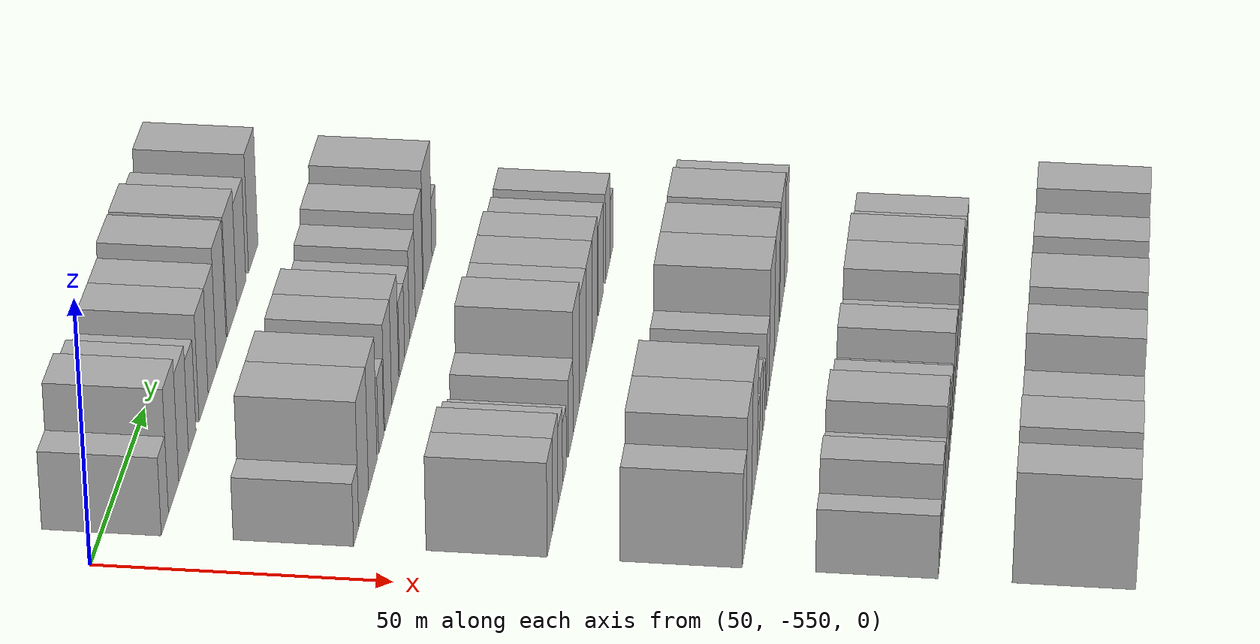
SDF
<sdf version="1.6">
 <world name="default">
  <model name="building_1">
   <static>1</static>
   <pose>50.0000 -536.6014 0 0.000000 0.000000 0.000000</pose>
   <link name="link">
    <pose>0 0 7.50 0 0 0</pose>
    <collision name="collision"><geometry><box><size>20.0000 6.7973 15.0000</size></box></geometry></collision>
    <visual name="visual">
     <cast_shadows>0</cast_shadows>
     <geometry><box><size>20.0000 6.7973 15.0000</size></box></geometry>
     <material>
      <script>
       <uri>model://HANNAS_wall/materials/scripts</uri>
       <uri>model://HANNAS_wall/materials/textures</uri>
       <name>vrc/HANNAS_wall</name>
      </script>
     </material>
    </visual>
   </link>
  </model>
  <model name="building_2">
   <static>1</static>
   <pose>50.0000 -528.2863 0 0.000000 0.000000 0.000000</pose>
   <link name="link">
    <pose>0 0 12.00 0 0 0</pose>
    <collision name="collision"><geometry><box><size>20.0000 9.8329 24.0000</size></box></geometry></collision>
    <visual name="visual">
     <cast_shadows>0</cast_shadows>
     <geometry><box><size>20.0000 9.8329 24.0000</size></box></geometry>
     <material>
      <script>
       <uri>model://HANNAS_wall/materials/scripts</uri>
       <uri>model://HANNAS_wall/materials/textures</uri>
       <name>vrc/HANNAS_wall</name>
      </script>
     </material>
    </visual>
   </link>
  </model>
  <model name="building_3">
   <static>1</static>
   <pose>50.0000 -518.5877 0 0.000000 0.000000 0.000000</pose>
   <link name="link">
    <pose>0 0 10.50 0 0 0</pose>
    <collision name="collision"><geometry><box><size>20.0000 9.5644 21.0000</size></box></geometry></collision>
    <visual name="visual">
     <cast_shadows>0</cast_shadows>
     <geometry><box><size>20.0000 9.5644 21.0000</size></box></geometry>
     <material>
      <script>
       <uri>model://HANNAS_wall/materials/scripts</uri>
       <uri>model://HANNAS_wall/materials/textures</uri>
       <name>vrc/HANNAS_wall</name>
      </script>
     </material>
    </visual>
   </link>
  </model>
  <model name="building_4">
   <static>1</static>
   <pose>50.0000 -510.1304 0 0.000000 0.000000 0.000000</pose>
   <link name="link">
    <pose>0 0 9.00 0 0 0</pose>
    <collision name="collision"><geometry><box><size>20.0000 7.3501 18.0000</size></box></geometry></collision>
    <visual name="visual">
     <cast_shadows>0</cast_shadows>
     <geometry><box><size>20.0000 7.3501 18.0000</size></box></geometry>
     <material>
      <script>
       <uri>model://HANNAS_wall/materials/scripts</uri>
       <uri>model://HANNAS_wall/materials/textures</uri>
       <name>vrc/HANNAS_wall</name>
      </script>
     </material>
    </visual>
   </link>
  </model>
  <model name="building_5">
   <static>1</static>
   <pose>50.0000 -498.8646 0 0.000000 0.000000 0.000000</pose>
   <link name="link">
    <pose>0 0 10.50 0 0 0</pose>
    <collision name="collision"><geometry><box><size>20.0000 9.1815 21.0000</size></box></geometry></collision>
    <visual name="visual">
     <cast_shadows>0</cast_shadows>
     <geometry><box><size>20.0000 9.1815 21.0000</size></box></geometry>
     <material>
      <script>
       <uri>model://HANNAS_wall/materials/scripts</uri>
       <uri>model://HANNAS_wall/materials/textures</uri>
       <name>vrc/HANNAS_wall</name>
      </script>
     </material>
    </visual>
   </link>
  </model>
  <model name="building_6">
   <static>1</static>
   <pose>50.0000 -489.9423 0 0.000000 0.000000 0.000000</pose>
   <link name="link">
    <pose>0 0 10.50 0 0 0</pose>
    <collision name="collision"><geometry><box><size>20.0000 8.6631 21.0000</size></box></geometry></collision>
    <visual name="visual">
     <cast_shadows>0</cast_shadows>
     <geometry><box><size>20.0000 8.6631 21.0000</size></box></geometry>
     <material>
      <script>
       <uri>model://HANNAS_wall/materials/scripts</uri>
       <uri>model://HANNAS_wall/materials/textures</uri>
       <name>vrc/HANNAS_wall</name>
      </script>
     </material>
    </visual>
   </link>
  </model>
  <model name="building_7">
   <static>1</static>
   <pose>50.0000 -480.5371 0 0.000000 0.000000 0.000000</pose>
   <link name="link">
    <pose>0 0 12.00 0 0 0</pose>
    <collision name="collision"><geometry><box><size>20.0000 10.1474 24.0000</size></box></geometry></collision>
    <visual name="visual">
     <cast_shadows>0</cast_shadows>
     <geometry><box><size>20.0000 10.1474 24.0000</size></box></geometry>
     <material>
      <script>
       <uri>model://HANNAS_wall/materials/scripts</uri>
       <uri>model://HANNAS_wall/materials/textures</uri>
       <name>vrc/HANNAS_wall</name>
      </script>
     </material>
    </visual>
   </link>
  </model>
  <model name="building_8">
   <static>1</static>
   <pose>50.0000 -469.3059 0 0.000000 0.000000 0.000000</pose>
   <link name="link">
    <pose>0 0 12.00 0 0 0</pose>
    <collision name="collision"><geometry><box><size>20.0000 10.3150 24.0000</size></box></geometry></collision>
    <visual name="visual">
     <cast_shadows>0</cast_shadows>
     <geometry><box><size>20.0000 10.3150 24.0000</size></box></geometry>
     <material>
      <script>
       <uri>model://HANNAS_wall/materials/scripts</uri>
       <uri>model://HANNAS_wall/materials/textures</uri>
       <name>vrc/HANNAS_wall</name>
      </script>
     </material>
    </visual>
   </link>
  </model>
  <model name="building_9">
   <static>1</static>
   <pose>50.0000 -459.2123 0 0.000000 0.000000 0.000000</pose>
   <link name="link">
    <pose>0 0 10.50 0 0 0</pose>
    <collision name="collision"><geometry><box><size>20.0000 9.8722 21.0000</size></box></geometry></collision>
    <visual name="visual">
     <cast_shadows>0</cast_shadows>
     <geometry><box><size>20.0000 9.8722 21.0000</size></box></geometry>
     <material>
      <script>
       <uri>model://HANNAS_wall/materials/scripts</uri>
       <uri>model://HANNAS_wall/materials/textures</uri>
       <name>vrc/HANNAS_wall</name>
      </script>
     </material>
    </visual>
   </link>
  </model>
  <model name="building_10">
   <static>1</static>
   <pose>50.0000 -446.0647 0 0.000000 0.000000 0.000000</pose>
   <link name="link">
    <pose>0 0 12.00 0 0 0</pose>
    <collision name="collision"><geometry><box><size>20.0000 10.4230 24.0000</size></box></geometry></collision>
    <visual name="visual">
     <cast_shadows>0</cast_shadows>
     <geometry><box><size>20.0000 10.4230 24.0000</size></box></geometry>
     <material>
      <script>
       <uri>model://HANNAS_wall/materials/scripts</uri>
       <uri>model://HANNAS_wall/materials/textures</uri>
       <name>vrc/HANNAS_wall</name>
      </script>
     </material>
    </visual>
   </link>
  </model>
  <model name="building_125">
   <static>1</static>
   <pose>82.0000 -537.0129 0 0.000000 0.000000 0.000000</pose>
   <link name="link">
    <pose>0 0 6.00 0 0 0</pose>
    <collision name="collision"><geometry><box><size>20.0000 5.9742 12.0000</size></box></geometry></collision>
    <visual name="visual">
     <cast_shadows>0</cast_shadows>
     <geometry><box><size>20.0000 5.9742 12.0000</size></box></geometry>
     <material>
      <script>
       <uri>model://HANNAS_wall/materials/scripts</uri>
       <uri>model://HANNAS_wall/materials/textures</uri>
       <name>vrc/HANNAS_wall</name>
      </script>
     </material>
    </visual>
   </link>
  </model>
  <model name="building_126">
   <static>1</static>
   <pose>82.0000 -528.3929 0 0.000000 0.000000 0.000000</pose>
   <link name="link">
    <pose>0 0 12.00 0 0 0</pose>
    <collision name="collision"><geometry><box><size>20.0000 11.2658 24.0000</size></box></geometry></collision>
    <visual name="visual">
     <cast_shadows>0</cast_shadows>
     <geometry><box><size>20.0000 11.2658 24.0000</size></box></geometry>
     <material>
      <script>
       <uri>model://HANNAS_wall/materials/scripts</uri>
       <uri>model://HANNAS_wall/materials/textures</uri>
       <name>vrc/HANNAS_wall</name>
      </script>
     </material>
    </visual>
   </link>
  </model>
  <model name="building_127">
   <static>1</static>
   <pose>82.0000 -517.7453 0 0.000000 0.000000 0.000000</pose>
   <link name="link">
    <pose>0 0 12.00 0 0 0</pose>
    <collision name="collision"><geometry><box><size>20.0000 10.0294 24.0000</size></box></geometry></collision>
    <visual name="visual">
     <cast_shadows>0</cast_shadows>
     <geometry><box><size>20.0000 10.0294 24.0000</size></box></geometry>
     <material>
      <script>
       <uri>model://HANNAS_wall/materials/scripts</uri>
       <uri>model://HANNAS_wall/materials/textures</uri>
       <name>vrc/HANNAS_wall</name>
      </script>
     </material>
    </visual>
   </link>
  </model>
  <model name="building_128">
   <static>1</static>
   <pose>82.0000 -507.5760 0 0.000000 0.000000 0.000000</pose>
   <link name="link">
    <pose>0 0 7.50 0 0 0</pose>
    <collision name="collision"><geometry><box><size>20.0000 6.3092 15.0000</size></box></geometry></collision>
    <visual name="visual">
     <cast_shadows>0</cast_shadows>
     <geometry><box><size>20.0000 6.3092 15.0000</size></box></geometry>
     <material>
      <script>
       <uri>model://HANNAS_wall/materials/scripts</uri>
       <uri>model://HANNAS_wall/materials/textures</uri>
       <name>vrc/HANNAS_wall</name>
      </script>
     </material>
    </visual>
   </link>
  </model>
  <model name="building_129">
   <static>1</static>
   <pose>82.0000 -499.1263 0 0.000000 0.000000 0.000000</pose>
   <link name="link">
    <pose>0 0 10.50 0 0 0</pose>
    <collision name="collision"><geometry><box><size>20.0000 8.5902 21.0000</size></box></geometry></collision>
    <visual name="visual">
     <cast_shadows>0</cast_shadows>
     <geometry><box><size>20.0000 8.5902 21.0000</size></box></geometry>
     <material>
      <script>
       <uri>model://HANNAS_wall/materials/scripts</uri>
       <uri>model://HANNAS_wall/materials/textures</uri>
       <name>vrc/HANNAS_wall</name>
      </script>
     </material>
    </visual>
   </link>
  </model>
  <model name="building_130">
   <static>1</static>
   <pose>82.0000 -490.4486 0 0.000000 0.000000 0.000000</pose>
   <link name="link">
    <pose>0 0 10.50 0 0 0</pose>
    <collision name="collision"><geometry><box><size>20.0000 8.7653 21.0000</size></box></geometry></collision>
    <visual name="visual">
     <cast_shadows>0</cast_shadows>
     <geometry><box><size>20.0000 8.7653 21.0000</size></box></geometry>
     <material>
      <script>
       <uri>model://HANNAS_wall/materials/scripts</uri>
       <uri>model://HANNAS_wall/materials/textures</uri>
       <name>vrc/HANNAS_wall</name>
      </script>
     </material>
    </visual>
   </link>
  </model>
  <model name="building_131">
   <static>1</static>
   <pose>82.0000 -481.8090 0 0.000000 0.000000 0.000000</pose>
   <link name="link">
    <pose>0 0 7.50 0 0 0</pose>
    <collision name="collision"><geometry><box><size>20.0000 6.5139 15.0000</size></box></geometry></collision>
    <visual name="visual">
     <cast_shadows>0</cast_shadows>
     <geometry><box><size>20.0000 6.5139 15.0000</size></box></geometry>
     <material>
      <script>
       <uri>model://HANNAS_wall/materials/scripts</uri>
       <uri>model://HANNAS_wall/materials/textures</uri>
       <name>vrc/HANNAS_wall</name>
      </script>
     </material>
    </visual>
   </link>
  </model>
  <model name="building_132">
   <static>1</static>
   <pose>82.0000 -475.4399 0 0.000000 0.000000 0.000000</pose>
   <link name="link">
    <pose>0 0 7.50 0 0 0</pose>
    <collision name="collision"><geometry><box><size>20.0000 6.2242 15.0000</size></box></geometry></collision>
    <visual name="visual">
     <cast_shadows>0</cast_shadows>
     <geometry><box><size>20.0000 6.2242 15.0000</size></box></geometry>
     <material>
      <script>
       <uri>model://HANNAS_wall/materials/scripts</uri>
       <uri>model://HANNAS_wall/materials/textures</uri>
       <name>vrc/HANNAS_wall</name>
      </script>
     </material>
    </visual>
   </link>
  </model>
  <model name="building_133">
   <static>1</static>
   <pose>82.0000 -468.5101 0 0.000000 0.000000 0.000000</pose>
   <link name="link">
    <pose>0 0 9.00 0 0 0</pose>
    <collision name="collision"><geometry><box><size>20.0000 7.6355 18.0000</size></box></geometry></collision>
    <visual name="visual">
     <cast_shadows>0</cast_shadows>
     <geometry><box><size>20.0000 7.6355 18.0000</size></box></geometry>
     <material>
      <script>
       <uri>model://HANNAS_wall/materials/scripts</uri>
       <uri>model://HANNAS_wall/materials/textures</uri>
       <name>vrc/HANNAS_wall</name>
      </script>
     </material>
    </visual>
   </link>
  </model>
  <model name="building_134">
   <static>1</static>
   <pose>82.0000 -459.9063 0 0.000000 0.000000 0.000000</pose>
   <link name="link">
    <pose>0 0 10.50 0 0 0</pose>
    <collision name="collision"><geometry><box><size>20.0000 9.5721 21.0000</size></box></geometry></collision>
    <visual name="visual">
     <cast_shadows>0</cast_shadows>
     <geometry><box><size>20.0000 9.5721 21.0000</size></box></geometry>
     <material>
      <script>
       <uri>model://HANNAS_wall/materials/scripts</uri>
       <uri>model://HANNAS_wall/materials/textures</uri>
       <name>vrc/HANNAS_wall</name>
      </script>
     </material>
    </visual>
   </link>
  </model>
  <model name="building_135">
   <static>1</static>
   <pose>82.0000 -448.4510 0 0.000000 0.000000 0.000000</pose>
   <link name="link">
    <pose>0 0 12.00 0 0 0</pose>
    <collision name="collision"><geometry><box><size>20.0000 11.3385 24.0000</size></box></geometry></collision>
    <visual name="visual">
     <cast_shadows>0</cast_shadows>
     <geometry><box><size>20.0000 11.3385 24.0000</size></box></geometry>
     <material>
      <script>
       <uri>model://HANNAS_wall/materials/scripts</uri>
       <uri>model://HANNAS_wall/materials/textures</uri>
       <name>vrc/HANNAS_wall</name>
      </script>
     </material>
    </visual>
   </link>
  </model>
  <model name="building_136">
   <static>1</static>
   <pose>82.0000 -439.8573 0 0.000000 0.000000 0.000000</pose>
   <link name="link">
    <pose>0 0 6.00 0 0 0</pose>
    <collision name="collision"><geometry><box><size>20.0000 5.8489 12.0000</size></box></geometry></collision>
    <visual name="visual">
     <cast_shadows>0</cast_shadows>
     <geometry><box><size>20.0000 5.8489 12.0000</size></box></geometry>
     <material>
      <script>
       <uri>model://HANNAS_wall/materials/scripts</uri>
       <uri>model://HANNAS_wall/materials/textures</uri>
       <name>vrc/HANNAS_wall</name>
      </script>
     </material>
    </visual>
   </link>
  </model>
  <model name="building_237">
   <static>1</static>
   <pose>114.0000 -536.0913 0 0.000000 0.000000 0.000000</pose>
   <link name="link">
    <pose>0 0 9.00 0 0 0</pose>
    <collision name="collision"><geometry><box><size>20.0000 7.8173 18.0000</size></box></geometry></collision>
    <visual name="visual">
     <cast_shadows>0</cast_shadows>
     <geometry><box><size>20.0000 7.8173 18.0000</size></box></geometry>
     <material>
      <script>
       <uri>model://HANNAS_wall/materials/scripts</uri>
       <uri>model://HANNAS_wall/materials/textures</uri>
       <name>vrc/HANNAS_wall</name>
      </script>
     </material>
    </visual>
   </link>
  </model>
  <model name="building_238">
   <static>1</static>
   <pose>114.0000 -528.2012 0 0.000000 0.000000 0.000000</pose>
   <link name="link">
    <pose>0 0 9.00 0 0 0</pose>
    <collision name="collision"><geometry><box><size>20.0000 7.9630 18.0000</size></box></geometry></collision>
    <visual name="visual">
     <cast_shadows>0</cast_shadows>
     <geometry><box><size>20.0000 7.9630 18.0000</size></box></geometry>
     <material>
      <script>
       <uri>model://HANNAS_wall/materials/scripts</uri>
       <uri>model://HANNAS_wall/materials/textures</uri>
       <name>vrc/HANNAS_wall</name>
      </script>
     </material>
    </visual>
   </link>
  </model>
  <model name="building_239">
   <static>1</static>
   <pose>114.0000 -520.7846 0 0.000000 0.000000 0.000000</pose>
   <link name="link">
    <pose>0 0 7.50 0 0 0</pose>
    <collision name="collision"><geometry><box><size>20.0000 6.8701 15.0000</size></box></geometry></collision>
    <visual name="visual">
     <cast_shadows>0</cast_shadows>
     <geometry><box><size>20.0000 6.8701 15.0000</size></box></geometry>
     <material>
      <script>
       <uri>model://HANNAS_wall/materials/scripts</uri>
       <uri>model://HANNAS_wall/materials/textures</uri>
       <name>vrc/HANNAS_wall</name>
      </script>
     </material>
    </visual>
   </link>
  </model>
  <model name="building_240">
   <static>1</static>
   <pose>114.0000 -514.4121 0 0.000000 0.000000 0.000000</pose>
   <link name="link">
    <pose>0 0 6.00 0 0 0</pose>
    <collision name="collision"><geometry><box><size>20.0000 5.8749 12.0000</size></box></geometry></collision>
    <visual name="visual">
     <cast_shadows>0</cast_shadows>
     <geometry><box><size>20.0000 5.8749 12.0000</size></box></geometry>
     <material>
      <script>
       <uri>model://HANNAS_wall/materials/scripts</uri>
       <uri>model://HANNAS_wall/materials/textures</uri>
       <name>vrc/HANNAS_wall</name>
      </script>
     </material>
    </visual>
   </link>
  </model>
  <model name="building_241">
   <static>1</static>
   <pose>114.0000 -504.7530 0 0.000000 0.000000 0.000000</pose>
   <link name="link">
    <pose>0 0 7.50 0 0 0</pose>
    <collision name="collision"><geometry><box><size>20.0000 7.4434 15.0000</size></box></geometry></collision>
    <visual name="visual">
     <cast_shadows>0</cast_shadows>
     <geometry><box><size>20.0000 7.4434 15.0000</size></box></geometry>
     <material>
      <script>
       <uri>model://HANNAS_wall/materials/scripts</uri>
       <uri>model://HANNAS_wall/materials/textures</uri>
       <name>vrc/HANNAS_wall</name>
      </script>
     </material>
    </visual>
   </link>
  </model>
  <model name="building_242">
   <static>1</static>
   <pose>114.0000 -495.9528 0 0.000000 0.000000 0.000000</pose>
   <link name="link">
    <pose>0 0 12.00 0 0 0</pose>
    <collision name="collision"><geometry><box><size>20.0000 10.1568 24.0000</size></box></geometry></collision>
    <visual name="visual">
     <cast_shadows>0</cast_shadows>
     <geometry><box><size>20.0000 10.1568 24.0000</size></box></geometry>
     <material>
      <script>
       <uri>model://HANNAS_wall/materials/scripts</uri>
       <uri>model://HANNAS_wall/materials/textures</uri>
       <name>vrc/HANNAS_wall</name>
      </script>
     </material>
    </visual>
   </link>
  </model>
  <model name="building_243">
   <static>1</static>
   <pose>114.0000 -485.7480 0 0.000000 0.000000 0.000000</pose>
   <link name="link">
    <pose>0 0 10.50 0 0 0</pose>
    <collision name="collision"><geometry><box><size>20.0000 10.2527 21.0000</size></box></geometry></collision>
    <visual name="visual">
     <cast_shadows>0</cast_shadows>
     <geometry><box><size>20.0000 10.2527 21.0000</size></box></geometry>
     <material>
      <script>
       <uri>model://HANNAS_wall/materials/scripts</uri>
       <uri>model://HANNAS_wall/materials/textures</uri>
       <name>vrc/HANNAS_wall</name>
      </script>
     </material>
    </visual>
   </link>
  </model>
  <model name="building_244">
   <static>1</static>
   <pose>114.0000 -475.7088 0 0.000000 0.000000 0.000000</pose>
   <link name="link">
    <pose>0 0 10.50 0 0 0</pose>
    <collision name="collision"><geometry><box><size>20.0000 9.8257 21.0000</size></box></geometry></collision>
    <visual name="visual">
     <cast_shadows>0</cast_shadows>
     <geometry><box><size>20.0000 9.8257 21.0000</size></box></geometry>
     <material>
      <script>
       <uri>model://HANNAS_wall/materials/scripts</uri>
       <uri>model://HANNAS_wall/materials/textures</uri>
       <name>vrc/HANNAS_wall</name>
      </script>
     </material>
    </visual>
   </link>
  </model>
  <model name="building_245">
   <static>1</static>
   <pose>114.0000 -466.4972 0 0.000000 0.000000 0.000000</pose>
   <link name="link">
    <pose>0 0 10.50 0 0 0</pose>
    <collision name="collision"><geometry><box><size>20.0000 8.5976 21.0000</size></box></geometry></collision>
    <visual name="visual">
     <cast_shadows>0</cast_shadows>
     <geometry><box><size>20.0000 8.5976 21.0000</size></box></geometry>
     <material>
      <script>
       <uri>model://HANNAS_wall/materials/scripts</uri>
       <uri>model://HANNAS_wall/materials/textures</uri>
       <name>vrc/HANNAS_wall</name>
      </script>
     </material>
    </visual>
   </link>
  </model>
  <model name="building_246">
   <static>1</static>
   <pose>114.0000 -455.8305 0 0.000000 0.000000 0.000000</pose>
   <link name="link">
    <pose>0 0 9.00 0 0 0</pose>
    <collision name="collision"><geometry><box><size>20.0000 8.7357 18.0000</size></box></geometry></collision>
    <visual name="visual">
     <cast_shadows>0</cast_shadows>
     <geometry><box><size>20.0000 8.7357 18.0000</size></box></geometry>
     <material>
      <script>
       <uri>model://HANNAS_wall/materials/scripts</uri>
       <uri>model://HANNAS_wall/materials/textures</uri>
       <name>vrc/HANNAS_wall</name>
      </script>
     </material>
    </visual>
   </link>
  </model>
  <model name="building_247">
   <static>1</static>
   <pose>114.0000 -444.4916 0 0.000000 0.000000 0.000000</pose>
   <link name="link">
    <pose>0 0 9.00 0 0 0</pose>
    <collision name="collision"><geometry><box><size>20.0000 7.9419 18.0000</size></box></geometry></collision>
    <visual name="visual">
     <cast_shadows>0</cast_shadows>
     <geometry><box><size>20.0000 7.9419 18.0000</size></box></geometry>
     <material>
      <script>
       <uri>model://HANNAS_wall/materials/scripts</uri>
       <uri>model://HANNAS_wall/materials/textures</uri>
       <name>vrc/HANNAS_wall</name>
      </script>
     </material>
    </visual>
   </link>
  </model>
  <model name="building_248">
   <static>1</static>
   <pose>114.0000 -437.7482 0 0.000000 0.000000 0.000000</pose>
   <link name="link">
    <pose>0 0 6.00 0 0 0</pose>
    <collision name="collision"><geometry><box><size>20.0000 5.5450 12.0000</size></box></geometry></collision>
    <visual name="visual">
     <cast_shadows>0</cast_shadows>
     <geometry><box><size>20.0000 5.5450 12.0000</size></box></geometry>
     <material>
      <script>
       <uri>model://HANNAS_wall/materials/scripts</uri>
       <uri>model://HANNAS_wall/materials/textures</uri>
       <name>vrc/HANNAS_wall</name>
      </script>
     </material>
    </visual>
   </link>
  </model>
  <model name="building_354">
   <static>1</static>
   <pose>146.0000 -536.2880 0 0.000000 0.000000 0.000000</pose>
   <link name="link">
    <pose>0 0 9.00 0 0 0</pose>
    <collision name="collision"><geometry><box><size>20.0000 7.4241 18.0000</size></box></geometry></collision>
    <visual name="visual">
     <cast_shadows>0</cast_shadows>
     <geometry><box><size>20.0000 7.4241 18.0000</size></box></geometry>
     <material>
      <script>
       <uri>model://HANNAS_wall/materials/scripts</uri>
       <uri>model://HANNAS_wall/materials/textures</uri>
       <name>vrc/HANNAS_wall</name>
      </script>
     </material>
    </visual>
   </link>
  </model>
  <model name="building_355">
   <static>1</static>
   <pose>146.0000 -526.7351 0 0.000000 0.000000 0.000000</pose>
   <link name="link">
    <pose>0 0 12.00 0 0 0</pose>
    <collision name="collision"><geometry><box><size>20.0000 11.6816 24.0000</size></box></geometry></collision>
    <visual name="visual">
     <cast_shadows>0</cast_shadows>
     <geometry><box><size>20.0000 11.6816 24.0000</size></box></geometry>
     <material>
      <script>
       <uri>model://HANNAS_wall/materials/scripts</uri>
       <uri>model://HANNAS_wall/materials/textures</uri>
       <name>vrc/HANNAS_wall</name>
      </script>
     </material>
    </visual>
   </link>
  </model>
  <model name="building_356">
   <static>1</static>
   <pose>146.0000 -515.0643 0 0.000000 0.000000 0.000000</pose>
   <link name="link">
    <pose>0 0 12.00 0 0 0</pose>
    <collision name="collision"><geometry><box><size>20.0000 11.6599 24.0000</size></box></geometry></collision>
    <visual name="visual">
     <cast_shadows>0</cast_shadows>
     <geometry><box><size>20.0000 11.6599 24.0000</size></box></geometry>
     <material>
      <script>
       <uri>model://HANNAS_wall/materials/scripts</uri>
       <uri>model://HANNAS_wall/materials/textures</uri>
       <name>vrc/HANNAS_wall</name>
      </script>
     </material>
    </visual>
   </link>
  </model>
  <model name="building_357">
   <static>1</static>
   <pose>146.0000 -506.7095 0 0.000000 0.000000 0.000000</pose>
   <link name="link">
    <pose>0 0 6.00 0 0 0</pose>
    <collision name="collision"><geometry><box><size>20.0000 5.0499 12.0000</size></box></geometry></collision>
    <visual name="visual">
     <cast_shadows>0</cast_shadows>
     <geometry><box><size>20.0000 5.0499 12.0000</size></box></geometry>
     <material>
      <script>
       <uri>model://HANNAS_wall/materials/scripts</uri>
       <uri>model://HANNAS_wall/materials/textures</uri>
       <name>vrc/HANNAS_wall</name>
      </script>
     </material>
    </visual>
   </link>
  </model>
  <model name="building_358">
   <static>1</static>
   <pose>146.0000 -501.1650 0 0.000000 0.000000 0.000000</pose>
   <link name="link">
    <pose>0 0 7.50 0 0 0</pose>
    <collision name="collision"><geometry><box><size>20.0000 6.0390 15.0000</size></box></geometry></collision>
    <visual name="visual">
     <cast_shadows>0</cast_shadows>
     <geometry><box><size>20.0000 6.0390 15.0000</size></box></geometry>
     <material>
      <script>
       <uri>model://HANNAS_wall/materials/scripts</uri>
       <uri>model://HANNAS_wall/materials/textures</uri>
       <name>vrc/HANNAS_wall</name>
      </script>
     </material>
    </visual>
   </link>
  </model>
  <model name="building_359">
   <static>1</static>
   <pose>146.0000 -495.3665 0 0.000000 0.000000 0.000000</pose>
   <link name="link">
    <pose>0 0 6.00 0 0 0</pose>
    <collision name="collision"><geometry><box><size>20.0000 5.5581 12.0000</size></box></geometry></collision>
    <visual name="visual">
     <cast_shadows>0</cast_shadows>
     <geometry><box><size>20.0000 5.5581 12.0000</size></box></geometry>
     <material>
      <script>
       <uri>model://HANNAS_wall/materials/scripts</uri>
       <uri>model://HANNAS_wall/materials/textures</uri>
       <name>vrc/HANNAS_wall</name>
      </script>
     </material>
    </visual>
   </link>
  </model>
  <model name="building_360">
   <static>1</static>
   <pose>146.0000 -486.5011 0 0.000000 0.000000 0.000000</pose>
   <link name="link">
    <pose>0 0 7.50 0 0 0</pose>
    <collision name="collision"><geometry><box><size>20.0000 6.1728 15.0000</size></box></geometry></collision>
    <visual name="visual">
     <cast_shadows>0</cast_shadows>
     <geometry><box><size>20.0000 6.1728 15.0000</size></box></geometry>
     <material>
      <script>
       <uri>model://HANNAS_wall/materials/scripts</uri>
       <uri>model://HANNAS_wall/materials/textures</uri>
       <name>vrc/HANNAS_wall</name>
      </script>
     </material>
    </visual>
   </link>
  </model>
  <model name="building_361">
   <static>1</static>
   <pose>146.0000 -477.5725 0 0.000000 0.000000 0.000000</pose>
   <link name="link">
    <pose>0 0 12.00 0 0 0</pose>
    <collision name="collision"><geometry><box><size>20.0000 11.6844 24.0000</size></box></geometry></collision>
    <visual name="visual">
     <cast_shadows>0</cast_shadows>
     <geometry><box><size>20.0000 11.6844 24.0000</size></box></geometry>
     <material>
      <script>
       <uri>model://HANNAS_wall/materials/scripts</uri>
       <uri>model://HANNAS_wall/materials/textures</uri>
       <name>vrc/HANNAS_wall</name>
      </script>
     </material>
    </visual>
   </link>
  </model>
  <model name="building_362">
   <static>1</static>
   <pose>146.0000 -466.3947 0 0.000000 0.000000 0.000000</pose>
   <link name="link">
    <pose>0 0 12.00 0 0 0</pose>
    <collision name="collision"><geometry><box><size>20.0000 10.6712 24.0000</size></box></geometry></collision>
    <visual name="visual">
     <cast_shadows>0</cast_shadows>
     <geometry><box><size>20.0000 10.6712 24.0000</size></box></geometry>
     <material>
      <script>
       <uri>model://HANNAS_wall/materials/scripts</uri>
       <uri>model://HANNAS_wall/materials/textures</uri>
       <name>vrc/HANNAS_wall</name>
      </script>
     </material>
    </visual>
   </link>
  </model>
  <model name="building_363">
   <static>1</static>
   <pose>146.0000 -453.6164 0 0.000000 0.000000 0.000000</pose>
   <link name="link">
    <pose>0 0 12.00 0 0 0</pose>
    <collision name="collision"><geometry><box><size>20.0000 10.8855 24.0000</size></box></geometry></collision>
    <visual name="visual">
     <cast_shadows>0</cast_shadows>
     <geometry><box><size>20.0000 10.8855 24.0000</size></box></geometry>
     <material>
      <script>
       <uri>model://HANNAS_wall/materials/scripts</uri>
       <uri>model://HANNAS_wall/materials/textures</uri>
       <name>vrc/HANNAS_wall</name>
      </script>
     </material>
    </visual>
   </link>
  </model>
  <model name="building_364">
   <static>1</static>
   <pose>146.0000 -443.9695 0 0.000000 0.000000 0.000000</pose>
   <link name="link">
    <pose>0 0 10.50 0 0 0</pose>
    <collision name="collision"><geometry><box><size>20.0000 8.4082 21.0000</size></box></geometry></collision>
    <visual name="visual">
     <cast_shadows>0</cast_shadows>
     <geometry><box><size>20.0000 8.4082 21.0000</size></box></geometry>
     <material>
      <script>
       <uri>model://HANNAS_wall/materials/scripts</uri>
       <uri>model://HANNAS_wall/materials/textures</uri>
       <name>vrc/HANNAS_wall</name>
      </script>
     </material>
    </visual>
   </link>
  </model>
  <model name="building_476">
   <static>1</static>
   <pose>178.0000 -537.4731 0 0.000000 0.000000 0.000000</pose>
   <link name="link">
    <pose>0 0 6.00 0 0 0</pose>
    <collision name="collision"><geometry><box><size>20.0000 5.0537 12.0000</size></box></geometry></collision>
    <visual name="visual">
     <cast_shadows>0</cast_shadows>
     <geometry><box><size>20.0000 5.0537 12.0000</size></box></geometry>
     <material>
      <script>
       <uri>model://HANNAS_wall/materials/scripts</uri>
       <uri>model://HANNAS_wall/materials/textures</uri>
       <name>vrc/HANNAS_wall</name>
      </script>
     </material>
    </visual>
   </link>
  </model>
  <model name="building_477">
   <static>1</static>
   <pose>178.0000 -530.3356 0 0.000000 0.000000 0.000000</pose>
   <link name="link">
    <pose>0 0 9.00 0 0 0</pose>
    <collision name="collision"><geometry><box><size>20.0000 7.2213 18.0000</size></box></geometry></collision>
    <visual name="visual">
     <cast_shadows>0</cast_shadows>
     <geometry><box><size>20.0000 7.2213 18.0000</size></box></geometry>
     <material>
      <script>
       <uri>model://HANNAS_wall/materials/scripts</uri>
       <uri>model://HANNAS_wall/materials/textures</uri>
       <name>vrc/HANNAS_wall</name>
      </script>
     </material>
    </visual>
   </link>
  </model>
  <model name="building_478">
   <static>1</static>
   <pose>178.0000 -523.6120 0 0.000000 0.000000 0.000000</pose>
   <link name="link">
    <pose>0 0 7.50 0 0 0</pose>
    <collision name="collision"><geometry><box><size>20.0000 6.2260 15.0000</size></box></geometry></collision>
    <visual name="visual">
     <cast_shadows>0</cast_shadows>
     <geometry><box><size>20.0000 6.2260 15.0000</size></box></geometry>
     <material>
      <script>
       <uri>model://HANNAS_wall/materials/scripts</uri>
       <uri>model://HANNAS_wall/materials/textures</uri>
       <name>vrc/HANNAS_wall</name>
      </script>
     </material>
    </visual>
   </link>
  </model>
  <model name="building_479">
   <static>1</static>
   <pose>178.0000 -515.5038 0 0.000000 0.000000 0.000000</pose>
   <link name="link">
    <pose>0 0 10.50 0 0 0</pose>
    <collision name="collision"><geometry><box><size>20.0000 9.9904 21.0000</size></box></geometry></collision>
    <visual name="visual">
     <cast_shadows>0</cast_shadows>
     <geometry><box><size>20.0000 9.9904 21.0000</size></box></geometry>
     <material>
      <script>
       <uri>model://HANNAS_wall/materials/scripts</uri>
       <uri>model://HANNAS_wall/materials/textures</uri>
       <name>vrc/HANNAS_wall</name>
      </script>
     </material>
    </visual>
   </link>
  </model>
  <model name="building_480">
   <static>1</static>
   <pose>178.0000 -507.6582 0 0.000000 0.000000 0.000000</pose>
   <link name="link">
    <pose>0 0 6.00 0 0 0</pose>
    <collision name="collision"><geometry><box><size>20.0000 5.7008 12.0000</size></box></geometry></collision>
    <visual name="visual">
     <cast_shadows>0</cast_shadows>
     <geometry><box><size>20.0000 5.7008 12.0000</size></box></geometry>
     <material>
      <script>
       <uri>model://HANNAS_wall/materials/scripts</uri>
       <uri>model://HANNAS_wall/materials/textures</uri>
       <name>vrc/HANNAS_wall</name>
      </script>
     </material>
    </visual>
   </link>
  </model>
  <model name="building_481">
   <static>1</static>
   <pose>178.0000 -499.7652 0 0.000000 0.000000 0.000000</pose>
   <link name="link">
    <pose>0 0 7.50 0 0 0</pose>
    <collision name="collision"><geometry><box><size>20.0000 6.0850 15.0000</size></box></geometry></collision>
    <visual name="visual">
     <cast_shadows>0</cast_shadows>
     <geometry><box><size>20.0000 6.0850 15.0000</size></box></geometry>
     <material>
      <script>
       <uri>model://HANNAS_wall/materials/scripts</uri>
       <uri>model://HANNAS_wall/materials/textures</uri>
       <name>vrc/HANNAS_wall</name>
      </script>
     </material>
    </visual>
   </link>
  </model>
  <model name="building_482">
   <static>1</static>
   <pose>178.0000 -493.9173 0 0.000000 0.000000 0.000000</pose>
   <link name="link">
    <pose>0 0 6.00 0 0 0</pose>
    <collision name="collision"><geometry><box><size>20.0000 5.6108 12.0000</size></box></geometry></collision>
    <visual name="visual">
     <cast_shadows>0</cast_shadows>
     <geometry><box><size>20.0000 5.6108 12.0000</size></box></geometry>
     <material>
      <script>
       <uri>model://HANNAS_wall/materials/scripts</uri>
       <uri>model://HANNAS_wall/materials/textures</uri>
       <name>vrc/HANNAS_wall</name>
      </script>
     </material>
    </visual>
   </link>
  </model>
  <model name="building_483">
   <static>1</static>
   <pose>178.0000 -487.0454 0 0.000000 0.000000 0.000000</pose>
   <link name="link">
    <pose>0 0 9.00 0 0 0</pose>
    <collision name="collision"><geometry><box><size>20.0000 8.1330 18.0000</size></box></geometry></collision>
    <visual name="visual">
     <cast_shadows>0</cast_shadows>
     <geometry><box><size>20.0000 8.1330 18.0000</size></box></geometry>
     <material>
      <script>
       <uri>model://HANNAS_wall/materials/scripts</uri>
       <uri>model://HANNAS_wall/materials/textures</uri>
       <name>vrc/HANNAS_wall</name>
      </script>
     </material>
    </visual>
   </link>
  </model>
  <model name="building_484">
   <static>1</static>
   <pose>178.0000 -479.5637 0 0.000000 0.000000 0.000000</pose>
   <link name="link">
    <pose>0 0 7.50 0 0 0</pose>
    <collision name="collision"><geometry><box><size>20.0000 6.8304 15.0000</size></box></geometry></collision>
    <visual name="visual">
     <cast_shadows>0</cast_shadows>
     <geometry><box><size>20.0000 6.8304 15.0000</size></box></geometry>
     <material>
      <script>
       <uri>model://HANNAS_wall/materials/scripts</uri>
       <uri>model://HANNAS_wall/materials/textures</uri>
       <name>vrc/HANNAS_wall</name>
      </script>
     </material>
    </visual>
   </link>
  </model>
  <model name="building_485">
   <static>1</static>
   <pose>178.0000 -471.0273 0 0.000000 0.000000 0.000000</pose>
   <link name="link">
    <pose>0 0 10.50 0 0 0</pose>
    <collision name="collision"><geometry><box><size>20.0000 10.2423 21.0000</size></box></geometry></collision>
    <visual name="visual">
     <cast_shadows>0</cast_shadows>
     <geometry><box><size>20.0000 10.2423 21.0000</size></box></geometry>
     <material>
      <script>
       <uri>model://HANNAS_wall/materials/scripts</uri>
       <uri>model://HANNAS_wall/materials/textures</uri>
       <name>vrc/HANNAS_wall</name>
      </script>
     </material>
    </visual>
   </link>
  </model>
  <model name="building_486">
   <static>1</static>
   <pose>178.0000 -461.1219 0 0.000000 0.000000 0.000000</pose>
   <link name="link">
    <pose>0 0 10.50 0 0 0</pose>
    <collision name="collision"><geometry><box><size>20.0000 9.5685 21.0000</size></box></geometry></collision>
    <visual name="visual">
     <cast_shadows>0</cast_shadows>
     <geometry><box><size>20.0000 9.5685 21.0000</size></box></geometry>
     <material>
      <script>
       <uri>model://HANNAS_wall/materials/scripts</uri>
       <uri>model://HANNAS_wall/materials/textures</uri>
       <name>vrc/HANNAS_wall</name>
      </script>
     </material>
    </visual>
   </link>
  </model>
  <model name="building_487">
   <static>1</static>
   <pose>178.0000 -453.9040 0 0.000000 0.000000 0.000000</pose>
   <link name="link">
    <pose>0 0 6.00 0 0 0</pose>
    <collision name="collision"><geometry><box><size>20.0000 4.8673 12.0000</size></box></geometry></collision>
    <visual name="visual">
     <cast_shadows>0</cast_shadows>
     <geometry><box><size>20.0000 4.8673 12.0000</size></box></geometry>
     <material>
      <script>
       <uri>model://HANNAS_wall/materials/scripts</uri>
       <uri>model://HANNAS_wall/materials/textures</uri>
       <name>vrc/HANNAS_wall</name>
      </script>
     </material>
    </visual>
   </link>
  </model>
  <model name="building_488">
   <static>1</static>
   <pose>178.0000 -447.9571 0 0.000000 0.000000 0.000000</pose>
   <link name="link">
    <pose>0 0 7.50 0 0 0</pose>
    <collision name="collision"><geometry><box><size>20.0000 7.0264 15.0000</size></box></geometry></collision>
    <visual name="visual">
     <cast_shadows>0</cast_shadows>
     <geometry><box><size>20.0000 7.0264 15.0000</size></box></geometry>
     <material>
      <script>
       <uri>model://HANNAS_wall/materials/scripts</uri>
       <uri>model://HANNAS_wall/materials/textures</uri>
       <name>vrc/HANNAS_wall</name>
      </script>
     </material>
    </visual>
   </link>
  </model>
  <model name="building_489">
   <static>1</static>
   <pose>178.0000 -441.0204 0 0.000000 0.000000 0.000000</pose>
   <link name="link">
    <pose>0 0 7.50 0 0 0</pose>
    <collision name="collision"><geometry><box><size>20.0000 6.8472 15.0000</size></box></geometry></collision>
    <visual name="visual">
     <cast_shadows>0</cast_shadows>
     <geometry><box><size>20.0000 6.8472 15.0000</size></box></geometry>
     <material>
      <script>
       <uri>model://HANNAS_wall/materials/scripts</uri>
       <uri>model://HANNAS_wall/materials/textures</uri>
       <name>vrc/HANNAS_wall</name>
      </script>
     </material>
    </visual>
   </link>
  </model>
  <model name="building_586">
   <static>1</static>
   <pose>210.0000 -535.3171 0 0.000000 0.000000 0.000000</pose>
   <link name="link">
    <pose>0 0 10.50 0 0 0</pose>
    <collision name="collision"><geometry><box><size>20.0000 9.3659 21.0000</size></box></geometry></collision>
    <visual name="visual">
     <cast_shadows>0</cast_shadows>
     <geometry><box><size>20.0000 9.3659 21.0000</size></box></geometry>
     <material>
      <script>
       <uri>model://HANNAS_wall/materials/scripts</uri>
       <uri>model://HANNAS_wall/materials/textures</uri>
       <name>vrc/HANNAS_wall</name>
      </script>
     </material>
    </visual>
   </link>
  </model>
  <model name="building_587">
   <static>1</static>
   <pose>210.0000 -525.5964 0 0.000000 0.000000 0.000000</pose>
   <link name="link">
    <pose>0 0 12.00 0 0 0</pose>
    <collision name="collision"><geometry><box><size>20.0000 10.0755 24.0000</size></box></geometry></collision>
    <visual name="visual">
     <cast_shadows>0</cast_shadows>
     <geometry><box><size>20.0000 10.0755 24.0000</size></box></geometry>
     <material>
      <script>
       <uri>model://HANNAS_wall/materials/scripts</uri>
       <uri>model://HANNAS_wall/materials/textures</uri>
       <name>vrc/HANNAS_wall</name>
      </script>
     </material>
    </visual>
   </link>
  </model>
  <model name="building_588">
   <static>1</static>
   <pose>210.0000 -514.2579 0 0.000000 0.000000 0.000000</pose>
   <link name="link">
    <pose>0 0 7.50 0 0 0</pose>
    <collision name="collision"><geometry><box><size>20.0000 6.6015 15.0000</size></box></geometry></collision>
    <visual name="visual">
     <cast_shadows>0</cast_shadows>
     <geometry><box><size>20.0000 6.6015 15.0000</size></box></geometry>
     <material>
      <script>
       <uri>model://HANNAS_wall/materials/scripts</uri>
       <uri>model://HANNAS_wall/materials/textures</uri>
       <name>vrc/HANNAS_wall</name>
      </script>
     </material>
    </visual>
   </link>
  </model>
  <model name="building_589">
   <static>1</static>
   <pose>210.0000 -506.6023 0 0.000000 0.000000 0.000000</pose>
   <link name="link">
    <pose>0 0 9.00 0 0 0</pose>
    <collision name="collision"><geometry><box><size>20.0000 8.7098 18.0000</size></box></geometry></collision>
    <visual name="visual">
     <cast_shadows>0</cast_shadows>
     <geometry><box><size>20.0000 8.7098 18.0000</size></box></geometry>
     <material>
      <script>
       <uri>model://HANNAS_wall/materials/scripts</uri>
       <uri>model://HANNAS_wall/materials/textures</uri>
       <name>vrc/HANNAS_wall</name>
      </script>
     </material>
    </visual>
   </link>
  </model>
  <model name="building_590">
   <static>1</static>
   <pose>210.0000 -495.3031 0 0.000000 0.000000 0.000000</pose>
   <link name="link">
    <pose>0 0 12.00 0 0 0</pose>
    <collision name="collision"><geometry><box><size>20.0000 9.8886 24.0000</size></box></geometry></collision>
    <visual name="visual">
     <cast_shadows>0</cast_shadows>
     <geometry><box><size>20.0000 9.8886 24.0000</size></box></geometry>
     <material>
      <script>
       <uri>model://HANNAS_wall/materials/scripts</uri>
       <uri>model://HANNAS_wall/materials/textures</uri>
       <name>vrc/HANNAS_wall</name>
      </script>
     </material>
    </visual>
   </link>
  </model>
  <model name="building_591">
   <static>1</static>
   <pose>210.0000 -487.9316 0 0.000000 0.000000 0.000000</pose>
   <link name="link">
    <pose>0 0 6.00 0 0 0</pose>
    <collision name="collision"><geometry><box><size>20.0000 4.8542 12.0000</size></box></geometry></collision>
    <visual name="visual">
     <cast_shadows>0</cast_shadows>
     <geometry><box><size>20.0000 4.8542 12.0000</size></box></geometry>
     <material>
      <script>
       <uri>model://HANNAS_wall/materials/scripts</uri>
       <uri>model://HANNAS_wall/materials/textures</uri>
       <name>vrc/HANNAS_wall</name>
      </script>
     </material>
    </visual>
   </link>
  </model>
  <model name="building_592">
   <static>1</static>
   <pose>210.0000 -478.5385 0 0.000000 0.000000 0.000000</pose>
   <link name="link">
    <pose>0 0 12.00 0 0 0</pose>
    <collision name="collision"><geometry><box><size>20.0000 11.9320 24.0000</size></box></geometry></collision>
    <visual name="visual">
     <cast_shadows>0</cast_shadows>
     <geometry><box><size>20.0000 11.9320 24.0000</size></box></geometry>
     <material>
      <script>
       <uri>model://HANNAS_wall/materials/scripts</uri>
       <uri>model://HANNAS_wall/materials/textures</uri>
       <name>vrc/HANNAS_wall</name>
      </script>
     </material>
    </visual>
   </link>
  </model>
  <model name="building_593">
   <static>1</static>
   <pose>210.0000 -467.4643 0 0.000000 0.000000 0.000000</pose>
   <link name="link">
    <pose>0 0 7.50 0 0 0</pose>
    <collision name="collision"><geometry><box><size>20.0000 6.2166 15.0000</size></box></geometry></collision>
    <visual name="visual">
     <cast_shadows>0</cast_shadows>
     <geometry><box><size>20.0000 6.2166 15.0000</size></box></geometry>
     <material>
      <script>
       <uri>model://HANNAS_wall/materials/scripts</uri>
       <uri>model://HANNAS_wall/materials/textures</uri>
       <name>vrc/HANNAS_wall</name>
      </script>
     </material>
    </visual>
   </link>
  </model>
  <model name="building_594">
   <static>1</static>
   <pose>210.0000 -457.0017 0 0.000000 0.000000 0.000000</pose>
   <link name="link">
    <pose>0 0 10.50 0 0 0</pose>
    <collision name="collision"><geometry><box><size>20.0000 8.7087 21.0000</size></box></geometry></collision>
    <visual name="visual">
     <cast_shadows>0</cast_shadows>
     <geometry><box><size>20.0000 8.7087 21.0000</size></box></geometry>
     <material>
      <script>
       <uri>model://HANNAS_wall/materials/scripts</uri>
       <uri>model://HANNAS_wall/materials/textures</uri>
       <name>vrc/HANNAS_wall</name>
      </script>
     </material>
    </visual>
   </link>
  </model>
  <model name="building_595">
   <static>1</static>
   <pose>210.0000 -449.2415 0 0.000000 0.000000 0.000000</pose>
   <link name="link">
    <pose>0 0 7.50 0 0 0</pose>
    <collision name="collision"><geometry><box><size>20.0000 6.8116 15.0000</size></box></geometry></collision>
    <visual name="visual">
     <cast_shadows>0</cast_shadows>
     <geometry><box><size>20.0000 6.8116 15.0000</size></box></geometry>
     <material>
      <script>
       <uri>model://HANNAS_wall/materials/scripts</uri>
       <uri>model://HANNAS_wall/materials/textures</uri>
       <name>vrc/HANNAS_wall</name>
      </script>
     </material>
    </visual>
   </link>
  </model>
  <model name="building_596">
   <static>1</static>
   <pose>210.0000 -438.8769 0 0.000000 0.000000 0.000000</pose>
   <link name="link">
    <pose>0 0 10.50 0 0 0</pose>
    <collision name="collision"><geometry><box><size>20.0000 9.9176 21.0000</size></box></geometry></collision>
    <visual name="visual">
     <cast_shadows>0</cast_shadows>
     <geometry><box><size>20.0000 9.9176 21.0000</size></box></geometry>
     <material>
      <script>
       <uri>model://HANNAS_wall/materials/scripts</uri>
       <uri>model://HANNAS_wall/materials/textures</uri>
       <name>vrc/HANNAS_wall</name>
      </script>
     </material>
    </visual>
   </link>
  </model>
 </world>
</sdf>
